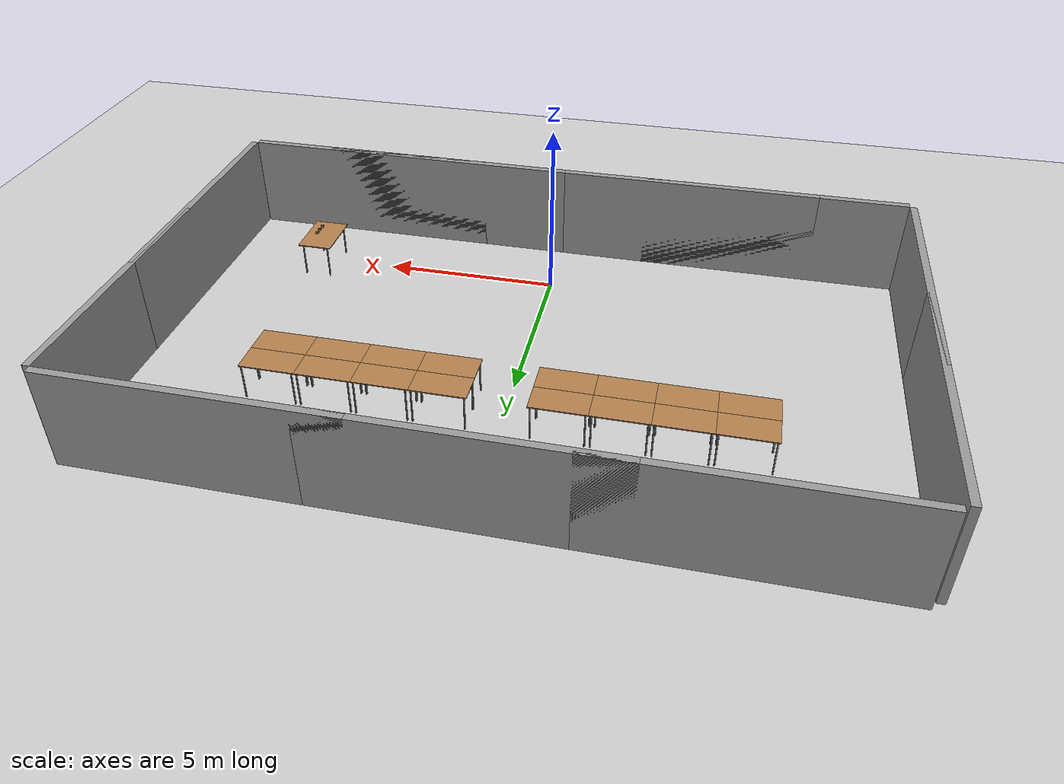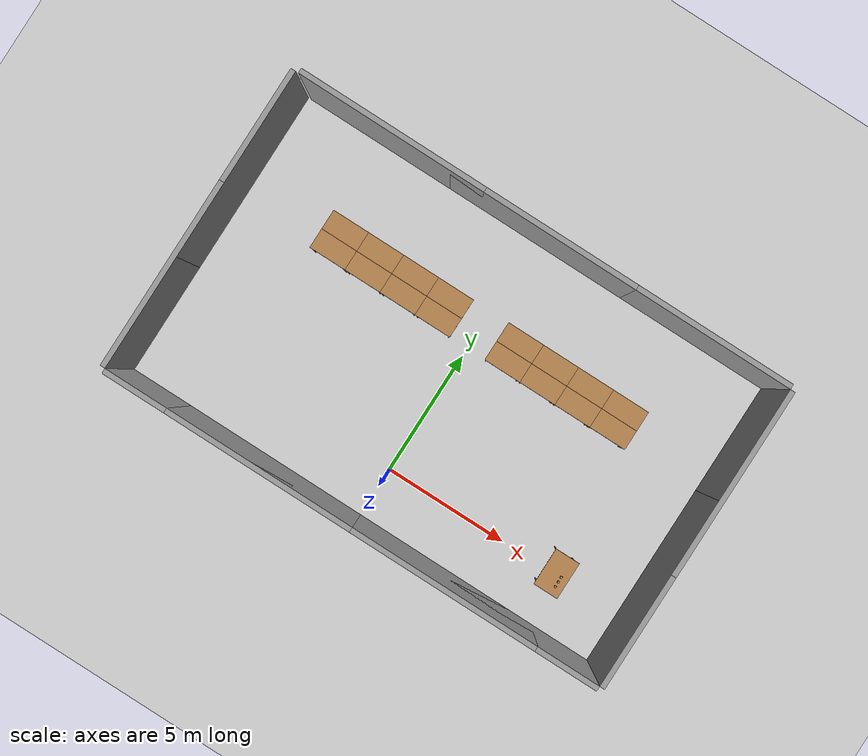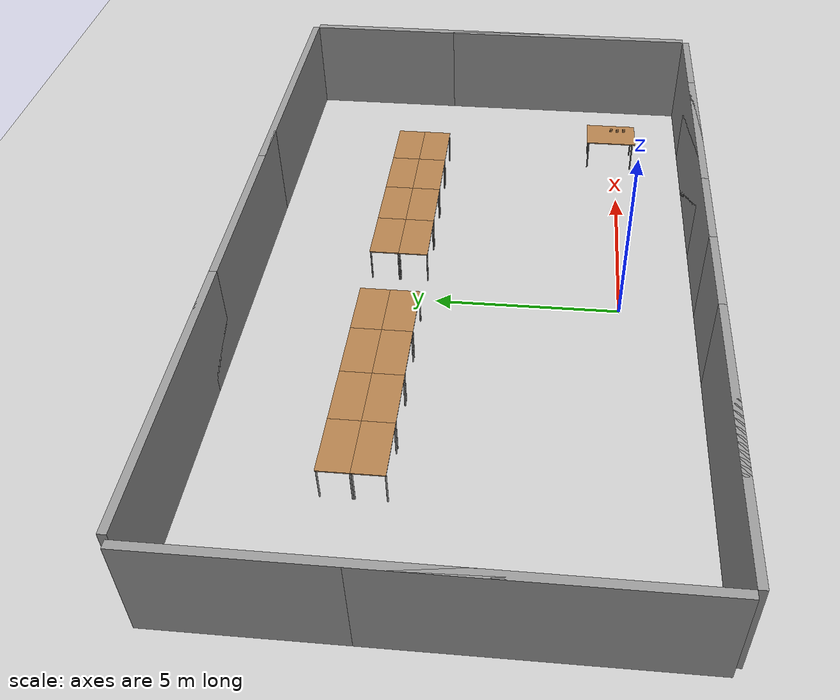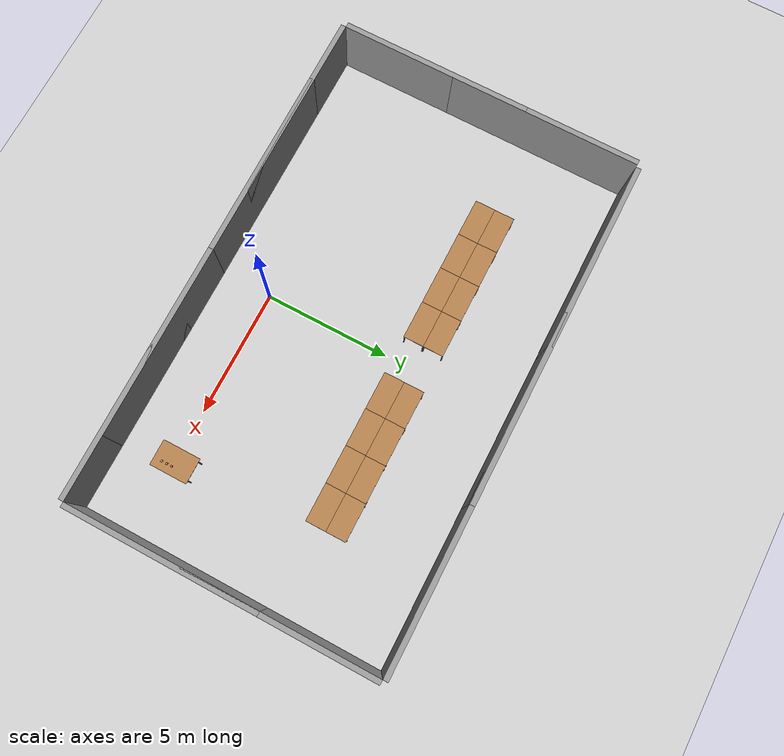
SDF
<sdf version="1.6">
 <world name="default">
  <light name="sun" type="directional">
   <pose>0 0 10 0 -0 0</pose>
   <diffuse>0.8 0.8 0.8 1</diffuse>
   <specular>0.2 0.2 0.2 1</specular>
   <attenuation>
    <range>1000</range>
    <constant>0.9</constant>
    <linear>0.01</linear>
    <quadratic>0.001</quadratic>
   </attenuation>
   <direction>-0.5 0.1 -0.9</direction>
  </light>
  <model name="ground_plane">
   <static>1</static>
   <link name="link">
    <collision name="collision">
     <geometry><plane><normal>0 0 1</normal><size>100 100</size></plane></geometry>
     <surface>
      <contact><collide_bitmask>65535</collide_bitmask></contact>
      <friction><ode><mu>100</mu><mu2>50</mu2></ode></friction>
     </surface>
    </collision>
    <visual name="visual">
     <cast_shadows>0</cast_shadows>
     <geometry><plane><normal>0 0 1</normal><size>100 100</size></plane></geometry>
     <material>
      <script><uri>file://media/materials/scripts/gazebo.material</uri><name>Gazebo/Grey</name></script>
     </material>
    </visual>
   </link>
  </model>
  <gravity>0 0 -9.8</gravity>
  <magnetic_field>6e-06 2.3e-05 -4.2e-05</magnetic_field>
  <atmosphere type="adiabatic"/>
  <physics name="default_physics" default="0" type="ode">
   <max_step_size>0.001</max_step_size>
   <real_time_factor>1</real_time_factor>
   <real_time_update_rate>1000</real_time_update_rate>
  </physics>
  <scene><ambient>0.4 0.4 0.4 1</ambient><background>0.7 0.7 0.7 1</background><shadows>1</shadows></scene>
  <audio><device>default</device></audio>
  <spherical_coordinates>
   <surface_model>EARTH_WGS84</surface_model>
   <latitude_deg>0</latitude_deg>
   <longitude_deg>0</longitude_deg>
   <elevation>0</elevation>
   <heading_deg>0</heading_deg>
  </spherical_coordinates>
  <model name="table">
   <static>1</static>
   <link name="link">
    <collision name="surface">
     <pose>0 0 1 0 -0 0</pose>
     <geometry><box><size>1.5 0.8 0.03</size></box></geometry>
     <surface><friction><ode><mu>0.6</mu><mu2>0.6</mu2></ode></friction></surface>
    </collision>
    <visual name="visual1">
     <pose>0 0 1 0 -0 0</pose>
     <geometry><box><size>1.5 0.8 0.03</size></box></geometry>
     <material>
      <script><uri>file://media/materials/scripts/gazebo.material</uri><name>Gazebo/Wood</name></script>
     </material>
    </visual>
    <collision name="front_left_leg">
     <pose>0.68 0.38 0.5 0 -0 0</pose>
     <geometry><cylinder><radius>0.02</radius><length>1</length></cylinder></geometry>
    </collision>
    <visual name="front_left_leg">
     <pose>0.68 0.38 0.5 0 -0 0</pose>
     <geometry><cylinder><radius>0.02</radius><length>1</length></cylinder></geometry>
     <material>
      <script><uri>file://media/materials/scripts/gazebo.material</uri><name>Gazebo/Grey</name></script>
     </material>
    </visual>
    <collision name="front_right_leg">
     <pose>0.68 -0.38 0.5 0 -0 0</pose>
     <geometry><cylinder><radius>0.02</radius><length>1</length></cylinder></geometry>
    </collision>
    <visual name="front_right_leg">
     <pose>0.68 -0.38 0.5 0 -0 0</pose>
     <geometry><cylinder><radius>0.02</radius><length>1</length></cylinder></geometry>
     <material>
      <script><uri>file://media/materials/scripts/gazebo.material</uri><name>Gazebo/Grey</name></script>
     </material>
    </visual>
    <collision name="back_right_leg">
     <pose>-0.68 -0.38 0.5 0 -0 0</pose>
     <geometry><cylinder><radius>0.02</radius><length>1</length></cylinder></geometry>
    </collision>
    <visual name="back_right_leg">
     <pose>-0.68 -0.38 0.5 0 -0 0</pose>
     <geometry><cylinder><radius>0.02</radius><length>1</length></cylinder></geometry>
     <material>
      <script><uri>file://media/materials/scripts/gazebo.material</uri><name>Gazebo/Grey</name></script>
     </material>
    </visual>
    <collision name="back_left_leg">
     <pose>-0.68 0.38 0.5 0 -0 0</pose>
     <geometry><cylinder><radius>0.02</radius><length>1</length></cylinder></geometry>
    </collision>
    <visual name="back_left_leg">
     <pose>-0.68 0.38 0.5 0 -0 0</pose>
     <geometry><cylinder><radius>0.02</radius><length>1</length></cylinder></geometry>
     <material>
      <script><uri>file://media/materials/scripts/gazebo.material</uri><name>Gazebo/Grey</name></script>
     </material>
    </visual>
   </link>
   <pose>-3 6.5 0 0 -0 0</pose>
  </model>
  <model name="table_0">
   <static>1</static>
   <link name="link">
    <collision name="surface">
     <pose>0 0 1 0 -0 0</pose>
     <geometry><box><size>1.5 0.8 0.03</size></box></geometry>
     <surface><friction><ode><mu>0.6</mu><mu2>0.6</mu2></ode></friction></surface>
    </collision>
    <visual name="visual1">
     <pose>0 0 1 0 -0 0</pose>
     <geometry><box><size>1.5 0.8 0.03</size></box></geometry>
     <material>
      <script><uri>file://media/materials/scripts/gazebo.material</uri><name>Gazebo/Wood</name></script>
     </material>
    </visual>
    <collision name="front_left_leg">
     <pose>0.68 0.38 0.5 0 -0 0</pose>
     <geometry><cylinder><radius>0.02</radius><length>1</length></cylinder></geometry>
    </collision>
    <visual name="front_left_leg">
     <pose>0.68 0.38 0.5 0 -0 0</pose>
     <geometry><cylinder><radius>0.02</radius><length>1</length></cylinder></geometry>
     <material>
      <script><uri>file://media/materials/scripts/gazebo.material</uri><name>Gazebo/Grey</name></script>
     </material>
    </visual>
    <collision name="front_right_leg">
     <pose>0.68 -0.38 0.5 0 -0 0</pose>
     <geometry><cylinder><radius>0.02</radius><length>1</length></cylinder></geometry>
    </collision>
    <visual name="front_right_leg">
     <pose>0.68 -0.38 0.5 0 -0 0</pose>
     <geometry><cylinder><radius>0.02</radius><length>1</length></cylinder></geometry>
     <material>
      <script><uri>file://media/materials/scripts/gazebo.material</uri><name>Gazebo/Grey</name></script>
     </material>
    </visual>
    <collision name="back_right_leg">
     <pose>-0.68 -0.38 0.5 0 -0 0</pose>
     <geometry><cylinder><radius>0.02</radius><length>1</length></cylinder></geometry>
    </collision>
    <visual name="back_right_leg">
     <pose>-0.68 -0.38 0.5 0 -0 0</pose>
     <geometry><cylinder><radius>0.02</radius><length>1</length></cylinder></geometry>
     <material>
      <script><uri>file://media/materials/scripts/gazebo.material</uri><name>Gazebo/Grey</name></script>
     </material>
    </visual>
    <collision name="back_left_leg">
     <pose>-0.68 0.38 0.5 0 -0 0</pose>
     <geometry><cylinder><radius>0.02</radius><length>1</length></cylinder></geometry>
    </collision>
    <visual name="back_left_leg">
     <pose>-0.68 0.38 0.5 0 -0 0</pose>
     <geometry><cylinder><radius>0.02</radius><length>1</length></cylinder></geometry>
     <material>
      <script><uri>file://media/materials/scripts/gazebo.material</uri><name>Gazebo/Grey</name></script>
     </material>
    </visual>
   </link>
   <pose>-4.5 6.5 0 0 -0 0</pose>
  </model>
  <model name="wood_cube_7_5cm">
   <link name="link">
    <pose>0 0 0.0375 0 -0 0</pose>
    <inertial>
     <mass>0.2249</mass>
     <inertia>
      <ixx>0.000210844</ixx>
      <ixy>0</ixy>
      <ixz>0</ixz>
      <iyy>0.000210844</iyy>
      <iyz>0</iyz>
      <izz>0.000210844</izz>
     </inertia>
    </inertial>
    <collision name="collision">
     <geometry><box><size>0.075 0.075 0.075</size></box></geometry>
     <surface>
      <contact>
       <poissons_ratio>0.347</poissons_ratio>
       <elastic_modulus>8.8e+09</elastic_modulus>
       <ode><kp>100000</kp><kd>100</kd><max_vel>100</max_vel><min_depth>0.001</min_depth></ode>
      </contact>
      <friction>
       <torsional>
        <coefficient>1</coefficient>
        <use_patch_radius>0</use_patch_radius>
        <surface_radius>0.01</surface_radius>
       </torsional>
      </friction>
     </surface>
    </collision>
    <visual name="visual">
     <geometry><box><size>0.075 0.075 0.075</size></box></geometry>
     <material>
      <script><uri>file://media/materials/scripts/gazebo.material</uri><name>Gazebo/Wood</name></script>
     </material>
    </visual>
   </link>
   <pose>7.3 0.2 1.01399 0 -0 0.000142</pose>
  </model>
  <model name="table_1">
   <static>1</static>
   <link name="link">
    <collision name="surface">
     <pose>0 0 1 0 -0 0</pose>
     <geometry><box><size>1.5 0.8 0.03</size></box></geometry>
     <surface><friction><ode><mu>0.6</mu><mu2>0.6</mu2></ode></friction></surface>
    </collision>
    <visual name="visual1">
     <pose>0 0 1 0 -0 0</pose>
     <geometry><box><size>1.5 0.8 0.03</size></box></geometry>
     <material>
      <script><uri>file://media/materials/scripts/gazebo.material</uri><name>Gazebo/Wood</name></script>
     </material>
    </visual>
    <collision name="front_left_leg">
     <pose>0.68 0.38 0.5 0 -0 0</pose>
     <geometry><cylinder><radius>0.02</radius><length>1</length></cylinder></geometry>
    </collision>
    <visual name="front_left_leg">
     <pose>0.68 0.38 0.5 0 -0 0</pose>
     <geometry><cylinder><radius>0.02</radius><length>1</length></cylinder></geometry>
     <material>
      <script><uri>file://media/materials/scripts/gazebo.material</uri><name>Gazebo/Grey</name></script>
     </material>
    </visual>
    <collision name="front_right_leg">
     <pose>0.68 -0.38 0.5 0 -0 0</pose>
     <geometry><cylinder><radius>0.02</radius><length>1</length></cylinder></geometry>
    </collision>
    <visual name="front_right_leg">
     <pose>0.68 -0.38 0.5 0 -0 0</pose>
     <geometry><cylinder><radius>0.02</radius><length>1</length></cylinder></geometry>
     <material>
      <script><uri>file://media/materials/scripts/gazebo.material</uri><name>Gazebo/Grey</name></script>
     </material>
    </visual>
    <collision name="back_right_leg">
     <pose>-0.68 -0.38 0.5 0 -0 0</pose>
     <geometry><cylinder><radius>0.02</radius><length>1</length></cylinder></geometry>
    </collision>
    <visual name="back_right_leg">
     <pose>-0.68 -0.38 0.5 0 -0 0</pose>
     <geometry><cylinder><radius>0.02</radius><length>1</length></cylinder></geometry>
     <material>
      <script><uri>file://media/materials/scripts/gazebo.material</uri><name>Gazebo/Grey</name></script>
     </material>
    </visual>
    <collision name="back_left_leg">
     <pose>-0.68 0.38 0.5 0 -0 0</pose>
     <geometry><cylinder><radius>0.02</radius><length>1</length></cylinder></geometry>
    </collision>
    <visual name="back_left_leg">
     <pose>-0.68 0.38 0.5 0 -0 0</pose>
     <geometry><cylinder><radius>0.02</radius><length>1</length></cylinder></geometry>
     <material>
      <script><uri>file://media/materials/scripts/gazebo.material</uri><name>Gazebo/Grey</name></script>
     </material>
    </visual>
   </link>
   <pose>-6 6.5 0 0 -0 0</pose>
  </model>
  <model name="table_2">
   <static>1</static>
   <link name="link">
    <collision name="surface">
     <pose>0 0 1 0 -0 0</pose>
     <geometry><box><size>1.5 0.8 0.03</size></box></geometry>
     <surface><friction><ode><mu>0.6</mu><mu2>0.6</mu2></ode></friction></surface>
    </collision>
    <visual name="visual1">
     <pose>0 0 1 0 -0 0</pose>
     <geometry><box><size>1.5 0.8 0.03</size></box></geometry>
     <material>
      <script><uri>file://media/materials/scripts/gazebo.material</uri><name>Gazebo/Wood</name></script>
     </material>
    </visual>
    <collision name="front_left_leg">
     <pose>0.68 0.38 0.5 0 -0 0</pose>
     <geometry><cylinder><radius>0.02</radius><length>1</length></cylinder></geometry>
    </collision>
    <visual name="front_left_leg">
     <pose>0.68 0.38 0.5 0 -0 0</pose>
     <geometry><cylinder><radius>0.02</radius><length>1</length></cylinder></geometry>
     <material>
      <script><uri>file://media/materials/scripts/gazebo.material</uri><name>Gazebo/Grey</name></script>
     </material>
    </visual>
    <collision name="front_right_leg">
     <pose>0.68 -0.38 0.5 0 -0 0</pose>
     <geometry><cylinder><radius>0.02</radius><length>1</length></cylinder></geometry>
    </collision>
    <visual name="front_right_leg">
     <pose>0.68 -0.38 0.5 0 -0 0</pose>
     <geometry><cylinder><radius>0.02</radius><length>1</length></cylinder></geometry>
     <material>
      <script><uri>file://media/materials/scripts/gazebo.material</uri><name>Gazebo/Grey</name></script>
     </material>
    </visual>
    <collision name="back_right_leg">
     <pose>-0.68 -0.38 0.5 0 -0 0</pose>
     <geometry><cylinder><radius>0.02</radius><length>1</length></cylinder></geometry>
    </collision>
    <visual name="back_right_leg">
     <pose>-0.68 -0.38 0.5 0 -0 0</pose>
     <geometry><cylinder><radius>0.02</radius><length>1</length></cylinder></geometry>
     <material>
      <script><uri>file://media/materials/scripts/gazebo.material</uri><name>Gazebo/Grey</name></script>
     </material>
    </visual>
    <collision name="back_left_leg">
     <pose>-0.68 0.38 0.5 0 -0 0</pose>
     <geometry><cylinder><radius>0.02</radius><length>1</length></cylinder></geometry>
    </collision>
    <visual name="back_left_leg">
     <pose>-0.68 0.38 0.5 0 -0 0</pose>
     <geometry><cylinder><radius>0.02</radius><length>1</length></cylinder></geometry>
     <material>
      <script><uri>file://media/materials/scripts/gazebo.material</uri><name>Gazebo/Grey</name></script>
     </material>
    </visual>
   </link>
   <pose>-1.5 6.5 0 0 -0 0</pose>
  </model>
  <model name="table_4">
   <static>1</static>
   <link name="link">
    <collision name="surface">
     <pose>0 0 1 0 -0 0</pose>
     <geometry><box><size>1.5 0.8 0.03</size></box></geometry>
     <surface><friction><ode><mu>0.6</mu><mu2>0.6</mu2></ode></friction></surface>
    </collision>
    <visual name="visual1">
     <pose>0 0 1 0 -0 0</pose>
     <geometry><box><size>1.5 0.8 0.03</size></box></geometry>
     <material>
      <script><uri>file://media/materials/scripts/gazebo.material</uri><name>Gazebo/Wood</name></script>
     </material>
    </visual>
    <collision name="front_left_leg">
     <pose>0.68 0.38 0.5 0 -0 0</pose>
     <geometry><cylinder><radius>0.02</radius><length>1</length></cylinder></geometry>
    </collision>
    <visual name="front_left_leg">
     <pose>0.68 0.38 0.5 0 -0 0</pose>
     <geometry><cylinder><radius>0.02</radius><length>1</length></cylinder></geometry>
     <material>
      <script><uri>file://media/materials/scripts/gazebo.material</uri><name>Gazebo/Grey</name></script>
     </material>
    </visual>
    <collision name="front_right_leg">
     <pose>0.68 -0.38 0.5 0 -0 0</pose>
     <geometry><cylinder><radius>0.02</radius><length>1</length></cylinder></geometry>
    </collision>
    <visual name="front_right_leg">
     <pose>0.68 -0.38 0.5 0 -0 0</pose>
     <geometry><cylinder><radius>0.02</radius><length>1</length></cylinder></geometry>
     <material>
      <script><uri>file://media/materials/scripts/gazebo.material</uri><name>Gazebo/Grey</name></script>
     </material>
    </visual>
    <collision name="back_right_leg">
     <pose>-0.68 -0.38 0.5 0 -0 0</pose>
     <geometry><cylinder><radius>0.02</radius><length>1</length></cylinder></geometry>
    </collision>
    <visual name="back_right_leg">
     <pose>-0.68 -0.38 0.5 0 -0 0</pose>
     <geometry><cylinder><radius>0.02</radius><length>1</length></cylinder></geometry>
     <material>
      <script><uri>file://media/materials/scripts/gazebo.material</uri><name>Gazebo/Grey</name></script>
     </material>
    </visual>
    <collision name="back_left_leg">
     <pose>-0.68 0.38 0.5 0 -0 0</pose>
     <geometry><cylinder><radius>0.02</radius><length>1</length></cylinder></geometry>
    </collision>
    <visual name="back_left_leg">
     <pose>-0.68 0.38 0.5 0 -0 0</pose>
     <geometry><cylinder><radius>0.02</radius><length>1</length></cylinder></geometry>
     <material>
      <script><uri>file://media/materials/scripts/gazebo.material</uri><name>Gazebo/Grey</name></script>
     </material>
    </visual>
   </link>
   <pose>1.5 6.5 0 0 -0 0</pose>
  </model>
  <model name="table_5">
   <static>1</static>
   <link name="link">
    <collision name="surface">
     <pose>0 0 1 0 -0 0</pose>
     <geometry><box><size>1.5 0.8 0.03</size></box></geometry>
     <surface><friction><ode><mu>0.6</mu><mu2>0.6</mu2></ode></friction></surface>
    </collision>
    <visual name="visual1">
     <pose>0 0 1 0 -0 0</pose>
     <geometry><box><size>1.5 0.8 0.03</size></box></geometry>
     <material>
      <script><uri>file://media/materials/scripts/gazebo.material</uri><name>Gazebo/Wood</name></script>
     </material>
    </visual>
    <collision name="front_left_leg">
     <pose>0.68 0.38 0.5 0 -0 0</pose>
     <geometry><cylinder><radius>0.02</radius><length>1</length></cylinder></geometry>
    </collision>
    <visual name="front_left_leg">
     <pose>0.68 0.38 0.5 0 -0 0</pose>
     <geometry><cylinder><radius>0.02</radius><length>1</length></cylinder></geometry>
     <material>
      <script><uri>file://media/materials/scripts/gazebo.material</uri><name>Gazebo/Grey</name></script>
     </material>
    </visual>
    <collision name="front_right_leg">
     <pose>0.68 -0.38 0.5 0 -0 0</pose>
     <geometry><cylinder><radius>0.02</radius><length>1</length></cylinder></geometry>
    </collision>
    <visual name="front_right_leg">
     <pose>0.68 -0.38 0.5 0 -0 0</pose>
     <geometry><cylinder><radius>0.02</radius><length>1</length></cylinder></geometry>
     <material>
      <script><uri>file://media/materials/scripts/gazebo.material</uri><name>Gazebo/Grey</name></script>
     </material>
    </visual>
    <collision name="back_right_leg">
     <pose>-0.68 -0.38 0.5 0 -0 0</pose>
     <geometry><cylinder><radius>0.02</radius><length>1</length></cylinder></geometry>
    </collision>
    <visual name="back_right_leg">
     <pose>-0.68 -0.38 0.5 0 -0 0</pose>
     <geometry><cylinder><radius>0.02</radius><length>1</length></cylinder></geometry>
     <material>
      <script><uri>file://media/materials/scripts/gazebo.material</uri><name>Gazebo/Grey</name></script>
     </material>
    </visual>
    <collision name="back_left_leg">
     <pose>-0.68 0.38 0.5 0 -0 0</pose>
     <geometry><cylinder><radius>0.02</radius><length>1</length></cylinder></geometry>
    </collision>
    <visual name="back_left_leg">
     <pose>-0.68 0.38 0.5 0 -0 0</pose>
     <geometry><cylinder><radius>0.02</radius><length>1</length></cylinder></geometry>
     <material>
      <script><uri>file://media/materials/scripts/gazebo.material</uri><name>Gazebo/Grey</name></script>
     </material>
    </visual>
   </link>
   <pose>3 6.5 0 0 -0 0</pose>
  </model>
  <model name="table_6">
   <static>1</static>
   <link name="link">
    <collision name="surface">
     <pose>0 0 1 0 -0 0</pose>
     <geometry><box><size>1.5 0.8 0.03</size></box></geometry>
     <surface><friction><ode><mu>0.6</mu><mu2>0.6</mu2></ode></friction></surface>
    </collision>
    <visual name="visual1">
     <pose>0 0 1 0 -0 0</pose>
     <geometry><box><size>1.5 0.8 0.03</size></box></geometry>
     <material>
      <script><uri>file://media/materials/scripts/gazebo.material</uri><name>Gazebo/Wood</name></script>
     </material>
    </visual>
    <collision name="front_left_leg">
     <pose>0.68 0.38 0.5 0 -0 0</pose>
     <geometry><cylinder><radius>0.02</radius><length>1</length></cylinder></geometry>
    </collision>
    <visual name="front_left_leg">
     <pose>0.68 0.38 0.5 0 -0 0</pose>
     <geometry><cylinder><radius>0.02</radius><length>1</length></cylinder></geometry>
     <material>
      <script><uri>file://media/materials/scripts/gazebo.material</uri><name>Gazebo/Grey</name></script>
     </material>
    </visual>
    <collision name="front_right_leg">
     <pose>0.68 -0.38 0.5 0 -0 0</pose>
     <geometry><cylinder><radius>0.02</radius><length>1</length></cylinder></geometry>
    </collision>
    <visual name="front_right_leg">
     <pose>0.68 -0.38 0.5 0 -0 0</pose>
     <geometry><cylinder><radius>0.02</radius><length>1</length></cylinder></geometry>
     <material>
      <script><uri>file://media/materials/scripts/gazebo.material</uri><name>Gazebo/Grey</name></script>
     </material>
    </visual>
    <collision name="back_right_leg">
     <pose>-0.68 -0.38 0.5 0 -0 0</pose>
     <geometry><cylinder><radius>0.02</radius><length>1</length></cylinder></geometry>
    </collision>
    <visual name="back_right_leg">
     <pose>-0.68 -0.38 0.5 0 -0 0</pose>
     <geometry><cylinder><radius>0.02</radius><length>1</length></cylinder></geometry>
     <material>
      <script><uri>file://media/materials/scripts/gazebo.material</uri><name>Gazebo/Grey</name></script>
     </material>
    </visual>
    <collision name="back_left_leg">
     <pose>-0.68 0.38 0.5 0 -0 0</pose>
     <geometry><cylinder><radius>0.02</radius><length>1</length></cylinder></geometry>
    </collision>
    <visual name="back_left_leg">
     <pose>-0.68 0.38 0.5 0 -0 0</pose>
     <geometry><cylinder><radius>0.02</radius><length>1</length></cylinder></geometry>
     <material>
      <script><uri>file://media/materials/scripts/gazebo.material</uri><name>Gazebo/Grey</name></script>
     </material>
    </visual>
   </link>
   <pose>4.5 6.5 0 0 -0 0</pose>
  </model>
  <model name="table_7">
   <static>1</static>
   <link name="link">
    <collision name="surface">
     <pose>0 0 1 0 -0 0</pose>
     <geometry><box><size>1.5 0.8 0.03</size></box></geometry>
     <surface><friction><ode><mu>0.6</mu><mu2>0.6</mu2></ode></friction></surface>
    </collision>
    <visual name="visual1">
     <pose>0 0 1 0 -0 0</pose>
     <geometry><box><size>1.5 0.8 0.03</size></box></geometry>
     <material>
      <script><uri>file://media/materials/scripts/gazebo.material</uri><name>Gazebo/Wood</name></script>
     </material>
    </visual>
    <collision name="front_left_leg">
     <pose>0.68 0.38 0.5 0 -0 0</pose>
     <geometry><cylinder><radius>0.02</radius><length>1</length></cylinder></geometry>
    </collision>
    <visual name="front_left_leg">
     <pose>0.68 0.38 0.5 0 -0 0</pose>
     <geometry><cylinder><radius>0.02</radius><length>1</length></cylinder></geometry>
     <material>
      <script><uri>file://media/materials/scripts/gazebo.material</uri><name>Gazebo/Grey</name></script>
     </material>
    </visual>
    <collision name="front_right_leg">
     <pose>0.68 -0.38 0.5 0 -0 0</pose>
     <geometry><cylinder><radius>0.02</radius><length>1</length></cylinder></geometry>
    </collision>
    <visual name="front_right_leg">
     <pose>0.68 -0.38 0.5 0 -0 0</pose>
     <geometry><cylinder><radius>0.02</radius><length>1</length></cylinder></geometry>
     <material>
      <script><uri>file://media/materials/scripts/gazebo.material</uri><name>Gazebo/Grey</name></script>
     </material>
    </visual>
    <collision name="back_right_leg">
     <pose>-0.68 -0.38 0.5 0 -0 0</pose>
     <geometry><cylinder><radius>0.02</radius><length>1</length></cylinder></geometry>
    </collision>
    <visual name="back_right_leg">
     <pose>-0.68 -0.38 0.5 0 -0 0</pose>
     <geometry><cylinder><radius>0.02</radius><length>1</length></cylinder></geometry>
     <material>
      <script><uri>file://media/materials/scripts/gazebo.material</uri><name>Gazebo/Grey</name></script>
     </material>
    </visual>
    <collision name="back_left_leg">
     <pose>-0.68 0.38 0.5 0 -0 0</pose>
     <geometry><cylinder><radius>0.02</radius><length>1</length></cylinder></geometry>
    </collision>
    <visual name="back_left_leg">
     <pose>-0.68 0.38 0.5 0 -0 0</pose>
     <geometry><cylinder><radius>0.02</radius><length>1</length></cylinder></geometry>
     <material>
      <script><uri>file://media/materials/scripts/gazebo.material</uri><name>Gazebo/Grey</name></script>
     </material>
    </visual>
   </link>
   <pose>6 6.5 0 0 -0 0</pose>
  </model>
  <model name="table_8">
   <static>1</static>
   <link name="link">
    <collision name="surface">
     <pose>0 0 1 0 -0 0</pose>
     <geometry><box><size>1.5 0.8 0.03</size></box></geometry>
     <surface><friction><ode><mu>0.6</mu><mu2>0.6</mu2></ode></friction></surface>
    </collision>
    <visual name="visual1">
     <pose>0 0 1 0 -0 0</pose>
     <geometry><box><size>1.5 0.8 0.03</size></box></geometry>
     <material>
      <script><uri>file://media/materials/scripts/gazebo.material</uri><name>Gazebo/Wood</name></script>
     </material>
    </visual>
    <collision name="front_left_leg">
     <pose>0.68 0.38 0.5 0 -0 0</pose>
     <geometry><cylinder><radius>0.02</radius><length>1</length></cylinder></geometry>
    </collision>
    <visual name="front_left_leg">
     <pose>0.68 0.38 0.5 0 -0 0</pose>
     <geometry><cylinder><radius>0.02</radius><length>1</length></cylinder></geometry>
     <material>
      <script><uri>file://media/materials/scripts/gazebo.material</uri><name>Gazebo/Grey</name></script>
     </material>
    </visual>
    <collision name="front_right_leg">
     <pose>0.68 -0.38 0.5 0 -0 0</pose>
     <geometry><cylinder><radius>0.02</radius><length>1</length></cylinder></geometry>
    </collision>
    <visual name="front_right_leg">
     <pose>0.68 -0.38 0.5 0 -0 0</pose>
     <geometry><cylinder><radius>0.02</radius><length>1</length></cylinder></geometry>
     <material>
      <script><uri>file://media/materials/scripts/gazebo.material</uri><name>Gazebo/Grey</name></script>
     </material>
    </visual>
    <collision name="back_right_leg">
     <pose>-0.68 -0.38 0.5 0 -0 0</pose>
     <geometry><cylinder><radius>0.02</radius><length>1</length></cylinder></geometry>
    </collision>
    <visual name="back_right_leg">
     <pose>-0.68 -0.38 0.5 0 -0 0</pose>
     <geometry><cylinder><radius>0.02</radius><length>1</length></cylinder></geometry>
     <material>
      <script><uri>file://media/materials/scripts/gazebo.material</uri><name>Gazebo/Grey</name></script>
     </material>
    </visual>
    <collision name="back_left_leg">
     <pose>-0.68 0.38 0.5 0 -0 0</pose>
     <geometry><cylinder><radius>0.02</radius><length>1</length></cylinder></geometry>
    </collision>
    <visual name="back_left_leg">
     <pose>-0.68 0.38 0.5 0 -0 0</pose>
     <geometry><cylinder><radius>0.02</radius><length>1</length></cylinder></geometry>
     <material>
      <script><uri>file://media/materials/scripts/gazebo.material</uri><name>Gazebo/Grey</name></script>
     </material>
    </visual>
   </link>
   <pose>-6 5.7 0 0 -0 0</pose>
  </model>
  <model name="table_9">
   <static>1</static>
   <link name="link">
    <collision name="surface">
     <pose>0 0 1 0 -0 0</pose>
     <geometry><box><size>1.5 0.8 0.03</size></box></geometry>
     <surface><friction><ode><mu>0.6</mu><mu2>0.6</mu2></ode></friction></surface>
    </collision>
    <visual name="visual1">
     <pose>0 0 1 0 -0 0</pose>
     <geometry><box><size>1.5 0.8 0.03</size></box></geometry>
     <material>
      <script><uri>file://media/materials/scripts/gazebo.material</uri><name>Gazebo/Wood</name></script>
     </material>
    </visual>
    <collision name="front_left_leg">
     <pose>0.68 0.38 0.5 0 -0 0</pose>
     <geometry><cylinder><radius>0.02</radius><length>1</length></cylinder></geometry>
    </collision>
    <visual name="front_left_leg">
     <pose>0.68 0.38 0.5 0 -0 0</pose>
     <geometry><cylinder><radius>0.02</radius><length>1</length></cylinder></geometry>
     <material>
      <script><uri>file://media/materials/scripts/gazebo.material</uri><name>Gazebo/Grey</name></script>
     </material>
    </visual>
    <collision name="front_right_leg">
     <pose>0.68 -0.38 0.5 0 -0 0</pose>
     <geometry><cylinder><radius>0.02</radius><length>1</length></cylinder></geometry>
    </collision>
    <visual name="front_right_leg">
     <pose>0.68 -0.38 0.5 0 -0 0</pose>
     <geometry><cylinder><radius>0.02</radius><length>1</length></cylinder></geometry>
     <material>
      <script><uri>file://media/materials/scripts/gazebo.material</uri><name>Gazebo/Grey</name></script>
     </material>
    </visual>
    <collision name="back_right_leg">
     <pose>-0.68 -0.38 0.5 0 -0 0</pose>
     <geometry><cylinder><radius>0.02</radius><length>1</length></cylinder></geometry>
    </collision>
    <visual name="back_right_leg">
     <pose>-0.68 -0.38 0.5 0 -0 0</pose>
     <geometry><cylinder><radius>0.02</radius><length>1</length></cylinder></geometry>
     <material>
      <script><uri>file://media/materials/scripts/gazebo.material</uri><name>Gazebo/Grey</name></script>
     </material>
    </visual>
    <collision name="back_left_leg">
     <pose>-0.68 0.38 0.5 0 -0 0</pose>
     <geometry><cylinder><radius>0.02</radius><length>1</length></cylinder></geometry>
    </collision>
    <visual name="back_left_leg">
     <pose>-0.68 0.38 0.5 0 -0 0</pose>
     <geometry><cylinder><radius>0.02</radius><length>1</length></cylinder></geometry>
     <material>
      <script><uri>file://media/materials/scripts/gazebo.material</uri><name>Gazebo/Grey</name></script>
     </material>
    </visual>
   </link>
   <pose>-4.5 5.7 0 0 -0 0</pose>
  </model>
  <model name="table_10">
   <static>1</static>
   <link name="link">
    <collision name="surface">
     <pose>0 0 1 0 -0 0</pose>
     <geometry><box><size>1.5 0.8 0.03</size></box></geometry>
     <surface><friction><ode><mu>0.6</mu><mu2>0.6</mu2></ode></friction></surface>
    </collision>
    <visual name="visual1">
     <pose>0 0 1 0 -0 0</pose>
     <geometry><box><size>1.5 0.8 0.03</size></box></geometry>
     <material>
      <script><uri>file://media/materials/scripts/gazebo.material</uri><name>Gazebo/Wood</name></script>
     </material>
    </visual>
    <collision name="front_left_leg">
     <pose>0.68 0.38 0.5 0 -0 0</pose>
     <geometry><cylinder><radius>0.02</radius><length>1</length></cylinder></geometry>
    </collision>
    <visual name="front_left_leg">
     <pose>0.68 0.38 0.5 0 -0 0</pose>
     <geometry><cylinder><radius>0.02</radius><length>1</length></cylinder></geometry>
     <material>
      <script><uri>file://media/materials/scripts/gazebo.material</uri><name>Gazebo/Grey</name></script>
     </material>
    </visual>
    <collision name="front_right_leg">
     <pose>0.68 -0.38 0.5 0 -0 0</pose>
     <geometry><cylinder><radius>0.02</radius><length>1</length></cylinder></geometry>
    </collision>
    <visual name="front_right_leg">
     <pose>0.68 -0.38 0.5 0 -0 0</pose>
     <geometry><cylinder><radius>0.02</radius><length>1</length></cylinder></geometry>
     <material>
      <script><uri>file://media/materials/scripts/gazebo.material</uri><name>Gazebo/Grey</name></script>
     </material>
    </visual>
    <collision name="back_right_leg">
     <pose>-0.68 -0.38 0.5 0 -0 0</pose>
     <geometry><cylinder><radius>0.02</radius><length>1</length></cylinder></geometry>
    </collision>
    <visual name="back_right_leg">
     <pose>-0.68 -0.38 0.5 0 -0 0</pose>
     <geometry><cylinder><radius>0.02</radius><length>1</length></cylinder></geometry>
     <material>
      <script><uri>file://media/materials/scripts/gazebo.material</uri><name>Gazebo/Grey</name></script>
     </material>
    </visual>
    <collision name="back_left_leg">
     <pose>-0.68 0.38 0.5 0 -0 0</pose>
     <geometry><cylinder><radius>0.02</radius><length>1</length></cylinder></geometry>
    </collision>
    <visual name="back_left_leg">
     <pose>-0.68 0.38 0.5 0 -0 0</pose>
     <geometry><cylinder><radius>0.02</radius><length>1</length></cylinder></geometry>
     <material>
      <script><uri>file://media/materials/scripts/gazebo.material</uri><name>Gazebo/Grey</name></script>
     </material>
    </visual>
   </link>
   <pose>-3 5.7 0 0 -0 0</pose>
  </model>
  <model name="table_11">
   <static>1</static>
   <link name="link">
    <collision name="surface">
     <pose>0 0 1 0 -0 0</pose>
     <geometry><box><size>1.5 0.8 0.03</size></box></geometry>
     <surface><friction><ode><mu>0.6</mu><mu2>0.6</mu2></ode></friction></surface>
    </collision>
    <visual name="visual1">
     <pose>0 0 1 0 -0 0</pose>
     <geometry><box><size>1.5 0.8 0.03</size></box></geometry>
     <material>
      <script><uri>file://media/materials/scripts/gazebo.material</uri><name>Gazebo/Wood</name></script>
     </material>
    </visual>
    <collision name="front_left_leg">
     <pose>0.68 0.38 0.5 0 -0 0</pose>
     <geometry><cylinder><radius>0.02</radius><length>1</length></cylinder></geometry>
    </collision>
    <visual name="front_left_leg">
     <pose>0.68 0.38 0.5 0 -0 0</pose>
     <geometry><cylinder><radius>0.02</radius><length>1</length></cylinder></geometry>
     <material>
      <script><uri>file://media/materials/scripts/gazebo.material</uri><name>Gazebo/Grey</name></script>
     </material>
    </visual>
    <collision name="front_right_leg">
     <pose>0.68 -0.38 0.5 0 -0 0</pose>
     <geometry><cylinder><radius>0.02</radius><length>1</length></cylinder></geometry>
    </collision>
    <visual name="front_right_leg">
     <pose>0.68 -0.38 0.5 0 -0 0</pose>
     <geometry><cylinder><radius>0.02</radius><length>1</length></cylinder></geometry>
     <material>
      <script><uri>file://media/materials/scripts/gazebo.material</uri><name>Gazebo/Grey</name></script>
     </material>
    </visual>
    <collision name="back_right_leg">
     <pose>-0.68 -0.38 0.5 0 -0 0</pose>
     <geometry><cylinder><radius>0.02</radius><length>1</length></cylinder></geometry>
    </collision>
    <visual name="back_right_leg">
     <pose>-0.68 -0.38 0.5 0 -0 0</pose>
     <geometry><cylinder><radius>0.02</radius><length>1</length></cylinder></geometry>
     <material>
      <script><uri>file://media/materials/scripts/gazebo.material</uri><name>Gazebo/Grey</name></script>
     </material>
    </visual>
    <collision name="back_left_leg">
     <pose>-0.68 0.38 0.5 0 -0 0</pose>
     <geometry><cylinder><radius>0.02</radius><length>1</length></cylinder></geometry>
    </collision>
    <visual name="back_left_leg">
     <pose>-0.68 0.38 0.5 0 -0 0</pose>
     <geometry><cylinder><radius>0.02</radius><length>1</length></cylinder></geometry>
     <material>
      <script><uri>file://media/materials/scripts/gazebo.material</uri><name>Gazebo/Grey</name></script>
     </material>
    </visual>
   </link>
   <pose>-1.5 5.7 0 0 -0 0</pose>
  </model>
  <model name="table_13">
   <static>1</static>
   <link name="link">
    <collision name="surface">
     <pose>0 0 1 0 -0 0</pose>
     <geometry><box><size>1.5 0.8 0.03</size></box></geometry>
     <surface><friction><ode><mu>0.6</mu><mu2>0.6</mu2></ode></friction></surface>
    </collision>
    <visual name="visual1">
     <pose>0 0 1 0 -0 0</pose>
     <geometry><box><size>1.5 0.8 0.03</size></box></geometry>
     <material>
      <script><uri>file://media/materials/scripts/gazebo.material</uri><name>Gazebo/Wood</name></script>
     </material>
    </visual>
    <collision name="front_left_leg">
     <pose>0.68 0.38 0.5 0 -0 0</pose>
     <geometry><cylinder><radius>0.02</radius><length>1</length></cylinder></geometry>
    </collision>
    <visual name="front_left_leg">
     <pose>0.68 0.38 0.5 0 -0 0</pose>
     <geometry><cylinder><radius>0.02</radius><length>1</length></cylinder></geometry>
     <material>
      <script><uri>file://media/materials/scripts/gazebo.material</uri><name>Gazebo/Grey</name></script>
     </material>
    </visual>
    <collision name="front_right_leg">
     <pose>0.68 -0.38 0.5 0 -0 0</pose>
     <geometry><cylinder><radius>0.02</radius><length>1</length></cylinder></geometry>
    </collision>
    <visual name="front_right_leg">
     <pose>0.68 -0.38 0.5 0 -0 0</pose>
     <geometry><cylinder><radius>0.02</radius><length>1</length></cylinder></geometry>
     <material>
      <script><uri>file://media/materials/scripts/gazebo.material</uri><name>Gazebo/Grey</name></script>
     </material>
    </visual>
    <collision name="back_right_leg">
     <pose>-0.68 -0.38 0.5 0 -0 0</pose>
     <geometry><cylinder><radius>0.02</radius><length>1</length></cylinder></geometry>
    </collision>
    <visual name="back_right_leg">
     <pose>-0.68 -0.38 0.5 0 -0 0</pose>
     <geometry><cylinder><radius>0.02</radius><length>1</length></cylinder></geometry>
     <material>
      <script><uri>file://media/materials/scripts/gazebo.material</uri><name>Gazebo/Grey</name></script>
     </material>
    </visual>
    <collision name="back_left_leg">
     <pose>-0.68 0.38 0.5 0 -0 0</pose>
     <geometry><cylinder><radius>0.02</radius><length>1</length></cylinder></geometry>
    </collision>
    <visual name="back_left_leg">
     <pose>-0.68 0.38 0.5 0 -0 0</pose>
     <geometry><cylinder><radius>0.02</radius><length>1</length></cylinder></geometry>
     <material>
      <script><uri>file://media/materials/scripts/gazebo.material</uri><name>Gazebo/Grey</name></script>
     </material>
    </visual>
   </link>
   <pose>1.5 5.7 0 0 -0 0</pose>
  </model>
  <model name="table_14">
   <static>1</static>
   <link name="link">
    <collision name="surface">
     <pose>0 0 1 0 -0 0</pose>
     <geometry><box><size>1.5 0.8 0.03</size></box></geometry>
     <surface><friction><ode><mu>0.6</mu><mu2>0.6</mu2></ode></friction></surface>
    </collision>
    <visual name="visual1">
     <pose>0 0 1 0 -0 0</pose>
     <geometry><box><size>1.5 0.8 0.03</size></box></geometry>
     <material>
      <script><uri>file://media/materials/scripts/gazebo.material</uri><name>Gazebo/Wood</name></script>
     </material>
    </visual>
    <collision name="front_left_leg">
     <pose>0.68 0.38 0.5 0 -0 0</pose>
     <geometry><cylinder><radius>0.02</radius><length>1</length></cylinder></geometry>
    </collision>
    <visual name="front_left_leg">
     <pose>0.68 0.38 0.5 0 -0 0</pose>
     <geometry><cylinder><radius>0.02</radius><length>1</length></cylinder></geometry>
     <material>
      <script><uri>file://media/materials/scripts/gazebo.material</uri><name>Gazebo/Grey</name></script>
     </material>
    </visual>
    <collision name="front_right_leg">
     <pose>0.68 -0.38 0.5 0 -0 0</pose>
     <geometry><cylinder><radius>0.02</radius><length>1</length></cylinder></geometry>
    </collision>
    <visual name="front_right_leg">
     <pose>0.68 -0.38 0.5 0 -0 0</pose>
     <geometry><cylinder><radius>0.02</radius><length>1</length></cylinder></geometry>
     <material>
      <script><uri>file://media/materials/scripts/gazebo.material</uri><name>Gazebo/Grey</name></script>
     </material>
    </visual>
    <collision name="back_right_leg">
     <pose>-0.68 -0.38 0.5 0 -0 0</pose>
     <geometry><cylinder><radius>0.02</radius><length>1</length></cylinder></geometry>
    </collision>
    <visual name="back_right_leg">
     <pose>-0.68 -0.38 0.5 0 -0 0</pose>
     <geometry><cylinder><radius>0.02</radius><length>1</length></cylinder></geometry>
     <material>
      <script><uri>file://media/materials/scripts/gazebo.material</uri><name>Gazebo/Grey</name></script>
     </material>
    </visual>
    <collision name="back_left_leg">
     <pose>-0.68 0.38 0.5 0 -0 0</pose>
     <geometry><cylinder><radius>0.02</radius><length>1</length></cylinder></geometry>
    </collision>
    <visual name="back_left_leg">
     <pose>-0.68 0.38 0.5 0 -0 0</pose>
     <geometry><cylinder><radius>0.02</radius><length>1</length></cylinder></geometry>
     <material>
      <script><uri>file://media/materials/scripts/gazebo.material</uri><name>Gazebo/Grey</name></script>
     </material>
    </visual>
   </link>
   <pose>3 5.7 0 0 -0 0</pose>
  </model>
  <model name="table_15">
   <static>1</static>
   <link name="link">
    <collision name="surface">
     <pose>0 0 1 0 -0 0</pose>
     <geometry><box><size>1.5 0.8 0.03</size></box></geometry>
     <surface><friction><ode><mu>0.6</mu><mu2>0.6</mu2></ode></friction></surface>
    </collision>
    <visual name="visual1">
     <pose>0 0 1 0 -0 0</pose>
     <geometry><box><size>1.5 0.8 0.03</size></box></geometry>
     <material>
      <script><uri>file://media/materials/scripts/gazebo.material</uri><name>Gazebo/Wood</name></script>
     </material>
    </visual>
    <collision name="front_left_leg">
     <pose>0.68 0.38 0.5 0 -0 0</pose>
     <geometry><cylinder><radius>0.02</radius><length>1</length></cylinder></geometry>
    </collision>
    <visual name="front_left_leg">
     <pose>0.68 0.38 0.5 0 -0 0</pose>
     <geometry><cylinder><radius>0.02</radius><length>1</length></cylinder></geometry>
     <material>
      <script><uri>file://media/materials/scripts/gazebo.material</uri><name>Gazebo/Grey</name></script>
     </material>
    </visual>
    <collision name="front_right_leg">
     <pose>0.68 -0.38 0.5 0 -0 0</pose>
     <geometry><cylinder><radius>0.02</radius><length>1</length></cylinder></geometry>
    </collision>
    <visual name="front_right_leg">
     <pose>0.68 -0.38 0.5 0 -0 0</pose>
     <geometry><cylinder><radius>0.02</radius><length>1</length></cylinder></geometry>
     <material>
      <script><uri>file://media/materials/scripts/gazebo.material</uri><name>Gazebo/Grey</name></script>
     </material>
    </visual>
    <collision name="back_right_leg">
     <pose>-0.68 -0.38 0.5 0 -0 0</pose>
     <geometry><cylinder><radius>0.02</radius><length>1</length></cylinder></geometry>
    </collision>
    <visual name="back_right_leg">
     <pose>-0.68 -0.38 0.5 0 -0 0</pose>
     <geometry><cylinder><radius>0.02</radius><length>1</length></cylinder></geometry>
     <material>
      <script><uri>file://media/materials/scripts/gazebo.material</uri><name>Gazebo/Grey</name></script>
     </material>
    </visual>
    <collision name="back_left_leg">
     <pose>-0.68 0.38 0.5 0 -0 0</pose>
     <geometry><cylinder><radius>0.02</radius><length>1</length></cylinder></geometry>
    </collision>
    <visual name="back_left_leg">
     <pose>-0.68 0.38 0.5 0 -0 0</pose>
     <geometry><cylinder><radius>0.02</radius><length>1</length></cylinder></geometry>
     <material>
      <script><uri>file://media/materials/scripts/gazebo.material</uri><name>Gazebo/Grey</name></script>
     </material>
    </visual>
   </link>
   <pose>4.5 5.7 0 0 -0 0</pose>
  </model>
  <model name="table_16">
   <static>1</static>
   <link name="link">
    <collision name="surface">
     <pose>0 0 1 0 -0 0</pose>
     <geometry><box><size>1.5 0.8 0.03</size></box></geometry>
     <surface><friction><ode><mu>0.6</mu><mu2>0.6</mu2></ode></friction></surface>
    </collision>
    <visual name="visual1">
     <pose>0 0 1 0 -0 0</pose>
     <geometry><box><size>1.5 0.8 0.03</size></box></geometry>
     <material>
      <script><uri>file://media/materials/scripts/gazebo.material</uri><name>Gazebo/Wood</name></script>
     </material>
    </visual>
    <collision name="front_left_leg">
     <pose>0.68 0.38 0.5 0 -0 0</pose>
     <geometry><cylinder><radius>0.02</radius><length>1</length></cylinder></geometry>
    </collision>
    <visual name="front_left_leg">
     <pose>0.68 0.38 0.5 0 -0 0</pose>
     <geometry><cylinder><radius>0.02</radius><length>1</length></cylinder></geometry>
     <material>
      <script><uri>file://media/materials/scripts/gazebo.material</uri><name>Gazebo/Grey</name></script>
     </material>
    </visual>
    <collision name="front_right_leg">
     <pose>0.68 -0.38 0.5 0 -0 0</pose>
     <geometry><cylinder><radius>0.02</radius><length>1</length></cylinder></geometry>
    </collision>
    <visual name="front_right_leg">
     <pose>0.68 -0.38 0.5 0 -0 0</pose>
     <geometry><cylinder><radius>0.02</radius><length>1</length></cylinder></geometry>
     <material>
      <script><uri>file://media/materials/scripts/gazebo.material</uri><name>Gazebo/Grey</name></script>
     </material>
    </visual>
    <collision name="back_right_leg">
     <pose>-0.68 -0.38 0.5 0 -0 0</pose>
     <geometry><cylinder><radius>0.02</radius><length>1</length></cylinder></geometry>
    </collision>
    <visual name="back_right_leg">
     <pose>-0.68 -0.38 0.5 0 -0 0</pose>
     <geometry><cylinder><radius>0.02</radius><length>1</length></cylinder></geometry>
     <material>
      <script><uri>file://media/materials/scripts/gazebo.material</uri><name>Gazebo/Grey</name></script>
     </material>
    </visual>
    <collision name="back_left_leg">
     <pose>-0.68 0.38 0.5 0 -0 0</pose>
     <geometry><cylinder><radius>0.02</radius><length>1</length></cylinder></geometry>
    </collision>
    <visual name="back_left_leg">
     <pose>-0.68 0.38 0.5 0 -0 0</pose>
     <geometry><cylinder><radius>0.02</radius><length>1</length></cylinder></geometry>
     <material>
      <script><uri>file://media/materials/scripts/gazebo.material</uri><name>Gazebo/Grey</name></script>
     </material>
    </visual>
   </link>
   <pose>6 5.7 0 0 -0 0</pose>
  </model>
  <model name="grey_wall">
   <static>1</static>
   <link name="link">
    <pose>0 0 1.4 0 -0 0</pose>
    <collision name="collision"><geometry><box><size>7.5 0.2 2.8</size></box></geometry></collision>
    <visual name="visual">
     <cast_shadows>0</cast_shadows>
     <geometry><box><size>7.5 0.2 2.8</size></box></geometry>
     <material>
      <script>
       <uri>model://grey_wall/materials/scripts</uri>
       <uri>model://grey_wall/materials/textures</uri>
       <name>vrc/grey_wall</name>
      </script>
     </material>
    </visual>
   </link>
   <pose>-3.75 -2.1 0 0 -0 0</pose>
  </model>
  <model name="grey_wall_0">
   <static>1</static>
   <link name="link">
    <pose>0 0 1.4 0 -0 0</pose>
    <collision name="collision"><geometry><box><size>7.5 0.2 2.8</size></box></geometry></collision>
    <visual name="visual">
     <cast_shadows>0</cast_shadows>
     <geometry><box><size>7.5 0.2 2.8</size></box></geometry>
     <material>
      <script>
       <uri>model://grey_wall/materials/scripts</uri>
       <uri>model://grey_wall/materials/textures</uri>
       <name>vrc/grey_wall</name>
      </script>
     </material>
    </visual>
   </link>
   <pose>3.75 -2.1 0 0 -0 0</pose>
  </model>
  <model name="grey_wall_1">
   <static>1</static>
   <link name="link">
    <pose>0 0 1.4 0 -0 0</pose>
    <collision name="collision"><geometry><box><size>7.5 0.2 2.8</size></box></geometry></collision>
    <visual name="visual">
     <cast_shadows>0</cast_shadows>
     <geometry><box><size>7.5 0.2 2.8</size></box></geometry>
     <material>
      <script>
       <uri>model://grey_wall/materials/scripts</uri>
       <uri>model://grey_wall/materials/textures</uri>
       <name>vrc/grey_wall</name>
      </script>
     </material>
    </visual>
   </link>
   <pose>-6.25 -2.1 0 0 -0 0</pose>
  </model>
  <model name="grey_wall_2">
   <static>1</static>
   <link name="link">
    <pose>0 0 1.4 0 -0 0</pose>
    <collision name="collision"><geometry><box><size>7.5 0.2 2.8</size></box></geometry></collision>
    <visual name="visual">
     <cast_shadows>0</cast_shadows>
     <geometry><box><size>7.5 0.2 2.8</size></box></geometry>
     <material>
      <script>
       <uri>model://grey_wall/materials/scripts</uri>
       <uri>model://grey_wall/materials/textures</uri>
       <name>vrc/grey_wall</name>
      </script>
     </material>
    </visual>
   </link>
   <pose>6.25 -2.1 0 0 -0 0</pose>
  </model>
  <model name="grey_wall_3">
   <static>1</static>
   <link name="link">
    <pose>0 0 1.4 0 -0 0</pose>
    <collision name="collision"><geometry><box><size>7.5 0.2 2.8</size></box></geometry></collision>
    <visual name="visual">
     <cast_shadows>0</cast_shadows>
     <geometry><box><size>7.5 0.2 2.8</size></box></geometry>
     <material>
      <script>
       <uri>model://grey_wall/materials/scripts</uri>
       <uri>model://grey_wall/materials/textures</uri>
       <name>vrc/grey_wall</name>
      </script>
     </material>
    </visual>
   </link>
   <pose>-10.1 1.75 0 0 -0 1.5708</pose>
  </model>
  <model name="grey_wall_3_clone">
   <static>1</static>
   <link name="link">
    <pose>0 0 1.4 0 -0 0</pose>
    <collision name="collision"><geometry><box><size>7.5 0.2 2.8</size></box></geometry></collision>
    <visual name="visual">
     <cast_shadows>0</cast_shadows>
     <geometry><box><size>7.5 0.2 2.8</size></box></geometry>
     <material>
      <script>
       <uri>model://grey_wall/materials/scripts</uri>
       <uri>model://grey_wall/materials/textures</uri>
       <name>vrc/grey_wall</name>
      </script>
     </material>
    </visual>
   </link>
   <pose>-10.1 6.25 0 0 -0 1.5708</pose>
  </model>
  <model name="grey_wall_3_clone_clone">
   <static>1</static>
   <link name="link">
    <pose>0 0 1.4 0 -0 0</pose>
    <collision name="collision"><geometry><box><size>7.5 0.2 2.8</size></box></geometry></collision>
    <visual name="visual">
     <cast_shadows>0</cast_shadows>
     <geometry><box><size>7.5 0.2 2.8</size></box></geometry>
     <material>
      <script>
       <uri>model://grey_wall/materials/scripts</uri>
       <uri>model://grey_wall/materials/textures</uri>
       <name>vrc/grey_wall</name>
      </script>
     </material>
    </visual>
   </link>
   <pose>10.1 6.25 0 0 -0 1.5708</pose>
  </model>
  <model name="grey_wall_3_clone_clone_0">
   <static>1</static>
   <link name="link">
    <pose>0 0 1.4 0 -0 0</pose>
    <collision name="collision"><geometry><box><size>7.5 0.2 2.8</size></box></geometry></collision>
    <visual name="visual">
     <cast_shadows>0</cast_shadows>
     <geometry><box><size>7.5 0.2 2.8</size></box></geometry>
     <material>
      <script>
       <uri>model://grey_wall/materials/scripts</uri>
       <uri>model://grey_wall/materials/textures</uri>
       <name>vrc/grey_wall</name>
      </script>
     </material>
    </visual>
   </link>
   <pose>10.1 1.75 0 0 -0 1.5708</pose>
  </model>
  <model name="grey_wall_1_clone">
   <static>1</static>
   <link name="link">
    <pose>0 0 1.4 0 -0 0</pose>
    <collision name="collision"><geometry><box><size>7.5 0.2 2.8</size></box></geometry></collision>
    <visual name="visual">
     <cast_shadows>0</cast_shadows>
     <geometry><box><size>7.5 0.2 2.8</size></box></geometry>
     <material>
      <script>
       <uri>model://grey_wall/materials/scripts</uri>
       <uri>model://grey_wall/materials/textures</uri>
       <name>vrc/grey_wall</name>
      </script>
     </material>
    </visual>
   </link>
   <pose>-6.15 10.1 0 0 -0 0</pose>
  </model>
  <model name="grey_wall_clone">
   <static>1</static>
   <link name="link">
    <pose>0 0 1.4 0 -0 0</pose>
    <collision name="collision"><geometry><box><size>7.5 0.2 2.8</size></box></geometry></collision>
    <visual name="visual">
     <cast_shadows>0</cast_shadows>
     <geometry><box><size>7.5 0.2 2.8</size></box></geometry>
     <material>
      <script>
       <uri>model://grey_wall/materials/scripts</uri>
       <uri>model://grey_wall/materials/textures</uri>
       <name>vrc/grey_wall</name>
      </script>
     </material>
    </visual>
   </link>
   <pose>0 10.1 0 0 -0 0</pose>
  </model>
  <model name="grey_wall_clone_0">
   <static>1</static>
   <link name="link">
    <pose>0 0 1.4 0 -0 0</pose>
    <collision name="collision"><geometry><box><size>7.5 0.2 2.8</size></box></geometry></collision>
    <visual name="visual">
     <cast_shadows>0</cast_shadows>
     <geometry><box><size>7.5 0.2 2.8</size></box></geometry>
     <material>
      <script>
       <uri>model://grey_wall/materials/scripts</uri>
       <uri>model://grey_wall/materials/textures</uri>
       <name>vrc/grey_wall</name>
      </script>
     </material>
    </visual>
   </link>
   <pose>6.25 10.1 0 0 -0 0</pose>
  </model>
  <model name="wood_cube_7_5cm_0">
   <link name="link">
    <pose>0 0 0.0375 0 -0 0</pose>
    <inertial>
     <mass>0.2249</mass>
     <inertia>
      <ixx>0.000210844</ixx>
      <ixy>0</ixy>
      <ixz>0</ixz>
      <iyy>0.000210844</iyy>
      <iyz>0</iyz>
      <izz>0.000210844</izz>
     </inertia>
    </inertial>
    <collision name="collision">
     <geometry><box><size>0.075 0.075 0.075</size></box></geometry>
     <surface>
      <contact>
       <poissons_ratio>0.347</poissons_ratio>
       <elastic_modulus>8.8e+09</elastic_modulus>
       <ode><kp>100000</kp><kd>100</kd><max_vel>100</max_vel><min_depth>0.001</min_depth></ode>
      </contact>
      <friction>
       <torsional>
        <coefficient>1</coefficient>
        <use_patch_radius>0</use_patch_radius>
        <surface_radius>0.01</surface_radius>
       </torsional>
      </friction>
     </surface>
    </collision>
    <visual name="visual">
     <geometry><box><size>0.075 0.075 0.075</size></box></geometry>
     <material>
      <script><uri>file://media/materials/scripts/gazebo.material</uri><name>Gazebo/Wood</name></script>
     </material>
    </visual>
   </link>
   <pose>7.3 -1.3e-05 1.01399 0 -0 0.000613</pose>
  </model>
  <model name="wood_cube_7_5cm_1">
   <link name="link">
    <pose>0 0 0.0375 0 -0 0</pose>
    <inertial>
     <mass>0.2249</mass>
     <inertia>
      <ixx>0.000210844</ixx>
      <ixy>0</ixy>
      <ixz>0</ixz>
      <iyy>0.000210844</iyy>
      <iyz>0</iyz>
      <izz>0.000210844</izz>
     </inertia>
    </inertial>
    <collision name="collision">
     <geometry><box><size>0.075 0.075 0.075</size></box></geometry>
     <surface>
      <contact>
       <poissons_ratio>0.347</poissons_ratio>
       <elastic_modulus>8.8e+09</elastic_modulus>
       <ode><kp>100000</kp><kd>100</kd><max_vel>100</max_vel><min_depth>0.001</min_depth></ode>
      </contact>
      <friction>
       <torsional>
        <coefficient>1</coefficient>
        <use_patch_radius>0</use_patch_radius>
        <surface_radius>0.01</surface_radius>
       </torsional>
      </friction>
     </surface>
    </collision>
    <visual name="visual">
     <geometry><box><size>0.075 0.075 0.075</size></box></geometry>
     <material>
      <script><uri>file://media/materials/scripts/gazebo.material</uri><name>Gazebo/Wood</name></script>
     </material>
    </visual>
   </link>
   <pose>7.3 -0.200001 1.01399 0 -0 0</pose>
  </model>
  <model name="table_3">
   <static>1</static>
   <link name="link">
    <collision name="surface">
     <pose>0 0 1 0 -0 0</pose>
     <geometry><box><size>1.5 1 0.03</size></box></geometry>
     <surface><friction><ode><mu>0.6</mu><mu2>0.6</mu2></ode></friction></surface>
    </collision>
    <visual name="visual1">
     <pose>0 0 1 0 -0 0</pose>
     <geometry><box><size>1.5 1 0.03</size></box></geometry>
     <material>
      <script><uri>file://media/materials/scripts/gazebo.material</uri><name>Gazebo/Wood</name></script>
     </material>
    </visual>
    <collision name="front_left_leg">
     <pose>0.68 0.38 0.5 0 -0 0</pose>
     <geometry><cylinder><radius>0.02</radius><length>1</length></cylinder></geometry>
    </collision>
    <visual name="front_left_leg">
     <pose>0.68 0.38 0.5 0 -0 0</pose>
     <geometry><cylinder><radius>0.02</radius><length>1</length></cylinder></geometry>
     <material>
      <script><uri>file://media/materials/scripts/gazebo.material</uri><name>Gazebo/Grey</name></script>
     </material>
    </visual>
    <collision name="front_right_leg">
     <pose>0.68 -0.38 0.5 0 -0 0</pose>
     <geometry><cylinder><radius>0.02</radius><length>1</length></cylinder></geometry>
    </collision>
    <visual name="front_right_leg">
     <pose>0.68 -0.38 0.5 0 -0 0</pose>
     <geometry><cylinder><radius>0.02</radius><length>1</length></cylinder></geometry>
     <material>
      <script><uri>file://media/materials/scripts/gazebo.material</uri><name>Gazebo/Grey</name></script>
     </material>
    </visual>
    <collision name="back_right_leg">
     <pose>-0.68 -0.38 0.5 0 -0 0</pose>
     <geometry><cylinder><radius>0.02</radius><length>1</length></cylinder></geometry>
    </collision>
    <visual name="back_right_leg">
     <pose>-0.68 -0.38 0.5 0 -0 0</pose>
     <geometry><cylinder><radius>0.02</radius><length>1</length></cylinder></geometry>
     <material>
      <script><uri>file://media/materials/scripts/gazebo.material</uri><name>Gazebo/Grey</name></script>
     </material>
    </visual>
    <collision name="back_left_leg">
     <pose>-0.68 0.38 0.5 0 -0 0</pose>
     <geometry><cylinder><radius>0.02</radius><length>1</length></cylinder></geometry>
    </collision>
    <visual name="back_left_leg">
     <pose>-0.68 0.38 0.5 0 -0 0</pose>
     <geometry><cylinder><radius>0.02</radius><length>1</length></cylinder></geometry>
     <material>
      <script><uri>file://media/materials/scripts/gazebo.material</uri><name>Gazebo/Grey</name></script>
     </material>
    </visual>
   </link>
   <pose>7.10255 0.214258 0 0 -0 1.5708</pose>
  </model>
 </world>
</sdf>
